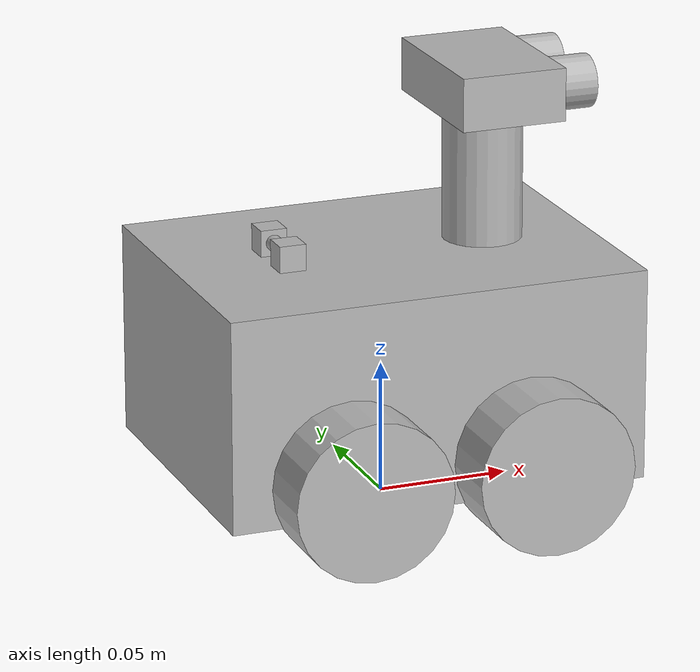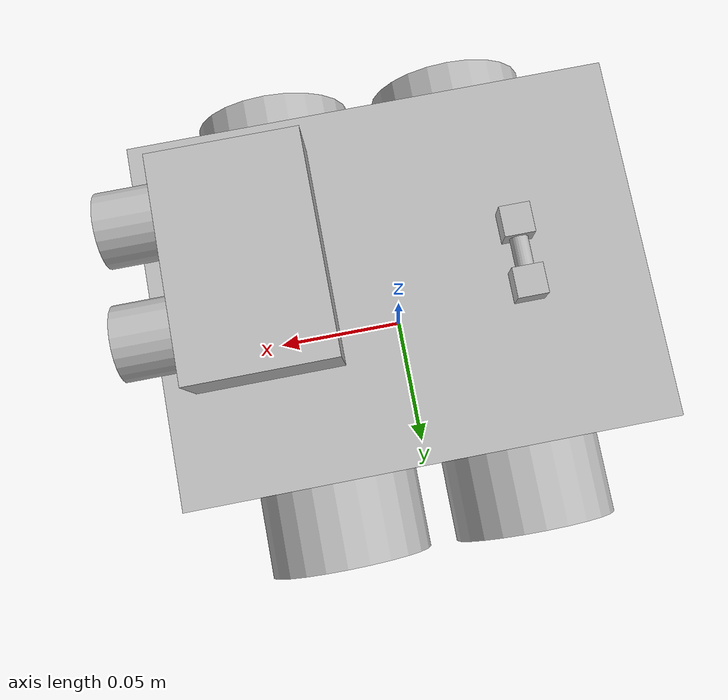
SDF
<?xml version="1.0"?>

<!--

  Meet the MiMs.

  The cool kids of the block, these guys are the
  heart and soul of this project. Coordinate to
  map out the Hood for search and rescue.

-->

<sdf version="1.6">
  <model name="minimapper">

    <!--
      The Body of the MiM
      -------------------
    -->

    <link name="body">

      <pose>0 0 0.055 0 0 0</pose>
      <inertial>
        <mass>0.6</mass>
        <inertia>
          <ixx>0.00104</ixx>
          <iyy>0.00160</iyy>
          <izz>0.00200</izz>
          <ixy>0</ixy>
          <iyz>0</iyz>
          <ixz>0</ixz>
        </inertia>
      </inertial>

      <collision name="body_col">
        <geometry>
          <box><size>0.16 0.12 0.08</size></box>
        </geometry>
      </collision>

      <visual name="body_vis">
        <geometry>
          <box><size>0.16 0.12 0.08</size></box>
        </geometry>
      </visual>
    </link>

    <!--
      Front Right Wheel of the MiM
      ----------------------------
    -->

    <link name="wheel_fr">
      <pose>0.035 0.075 0.03 1.5708 0 0</pose>
      <inertial>
        <mass>0.5</mass>
        <inertia>
          <ixx>0.000150</ixx>
          <iyy>0.000150</iyy>
          <izz>0.000225</izz>
          <ixy>0</ixy>
          <iyz>0</iyz>
          <ixz>0</ixz>
        </inertia>
      </inertial>
      <collision name="wheel_fr_col">
        <geometry>
          <cylinder>
            <radius>0.03</radius>
            <length>0.03</length>
          </cylinder>
        </geometry>
      </collision>
      <visual name="wheel_fr_vis">
        <geometry>
          <cylinder>
            <radius>0.03</radius>
            <length>0.03</length>
          </cylinder>
        </geometry>
      </visual>
    </link>

    <joint name="wheel_fr_joint" type="revolute">
      <parent>body</parent>
      <child>wheel_fr</child>
      <axis>
        <xyz>0 0 1</xyz>
        <use_parent_model_frame>0</use_parent_model_frame>
      </axis>
    </joint>

    <!--
      Front Left Wheel of the MiM
      ---------------------------
    -->

    <link name="wheel_fl">
      <pose>0.035 -0.07 0.03 1.5708 0 0</pose>
      <inertial>
        <mass>0.5</mass>
        <inertia>
          <ixx>0.000150</ixx>
          <iyy>0.000150</iyy>
          <izz>0.000225</izz>
          <ixy>0</ixy>
          <iyz>0</iyz>
          <ixz>0</ixz>
        </inertia>
      </inertial>
      <collision name="wheel_fl_col">
        <geometry>
          <cylinder>
            <radius>0.03</radius>
            <length>0.03</length>
          </cylinder>
        </geometry>
      </collision>
      <visual name="wheel_fl_vis">
        <geometry>
          <cylinder>
            <radius>0.03</radius>
            <length>0.03</length>
          </cylinder>
        </geometry>
      </visual>
    </link>

    <joint name="wheel_fl_joint" type="revolute">
      <parent>body</parent>
      <child>wheel_fl</child>
      <axis>
        <xyz>0 0 1</xyz>
        <use_parent_model_frame>0</use_parent_model_frame>
      </axis>
    </joint>

    <!--
      Rear Right Wheel of the MiM
      ---------------------------
    -->

    <link name="wheel_rr">
      <pose>-0.035 0.075 0.03 1.5708 0 0</pose>
      <inertial>
        <mass>0.5</mass>
        <inertia>
          <ixx>0.000150</ixx>
          <iyy>0.000150</iyy>
          <izz>0.000225</izz>
          <ixy>0</ixy>
          <iyz>0</iyz>
          <ixz>0</ixz>
        </inertia>
      </inertial>
      <collision name="wheel_rr_col">
        <geometry>
          <cylinder>
            <radius>0.03</radius>
            <length>0.03</length>
          </cylinder>
        </geometry>
      </collision>
      <visual name="wheel_rr_vis">
        <geometry>
          <cylinder>
            <radius>0.03</radius>
            <length>0.03</length>
          </cylinder>
        </geometry>
      </visual>
    </link>

    <joint name="wheel_rr_joint" type="revolute">
      <parent>body</parent>
      <child>wheel_rr</child>
      <axis>
        <xyz>0 0 1</xyz>
        <use_parent_model_frame>0</use_parent_model_frame>
      </axis>
    </joint>

    <!--
      Rear Left Wheel of the MiM
      ---------------------------
    -->

    <link name="wheel_rl">
      <pose>-0.035 -0.07 0.03 1.5708 0 0</pose>
      <inertial>
        <mass>0.5</mass>
        <inertia>
          <ixx>0.000150</ixx>
          <iyy>0.000150</iyy>
          <izz>0.000225</izz>
          <ixy>0</ixy>
          <iyz>0</iyz>
          <ixz>0</ixz>
        </inertia>
      </inertial>
      <collision name="wheel_rl_col">
        <geometry>
          <cylinder>
            <radius>0.03</radius>
            <length>0.03</length>
          </cylinder>
        </geometry>
      </collision>
      <visual name="wheel_rl_vis">
        <geometry>
          <cylinder>
            <radius>0.03</radius>
            <length>0.03</length>
          </cylinder>
        </geometry>
      </visual>
    </link>

    <joint name="wheel_rl_joint" type="revolute">
      <parent>body</parent>
      <child>wheel_rl</child>
      <axis>
        <xyz>0 0 1</xyz>
        <use_parent_model_frame>0</use_parent_model_frame>
      </axis>
    </joint>

    <!--
      MiM Visual System
      -----------------
    -->

    <include>
      <uri>model://vision</uri>
      <pose>0.04 0 0.095 0 0 0</pose>
    </include>

    <joint name="neck_base_joint" type="fixed">
      <pose>0.04 0 0.095 0 0 0</pose>
      <parent>body</parent>
      <child>vision::neck</child>
    </joint>

    <!--
      MiM Control System
      ------------------
    -->

    <!--
      MiM Gossip System
      -----------------
    -->

    <include>
      <uri>model://gossip</uri>
      <pose>-0.04 0 0.095 0 0 0</pose>
    </include>

    <joint name="speaker_joint" type="fixed">
      <pose>-0.04 -0.005 0.095 0 0 0</pose>
      <parent>body</parent>
      <child>gossip::speaker</child>
    </joint>

    <joint name="listener_joint" type="fixed">
      <pose>-0.04 -0.005 0.095 0 0 0</pose>
      <parent>body</parent>
      <child>gossip::listener</child>
    </joint>

  </model>
</sdf>

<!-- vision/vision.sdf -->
<!--

  Meet the Visions.

  The visual system for a MiM. Can detect and
  range objects within its visual cone. Allows
  the MiM to "stick its neck out" for mapping.

-->

<sdf version="1.6">
  <model name="vision">

    <!--
      The Neck of the Visual System
      -----------------------------
    -->

    <link name="neck">

      <pose>0 0 0.025 0 0 0</pose>
      <inertial>
        <mass>0.1</mass>
        <inertia>
          <ixx>0.00002646</ixx>
          <iyy>0.00002646</iyy>
          <izz>0.00001125</izz>
          <ixy>0</ixy>
          <iyz>0</iyz>
          <ixz>0</ixz>
        </inertia>
      </inertial>

      <collision name="neck_col">
        <geometry>
          <cylinder>
            <radius>0.015</radius>
            <length>0.050</length>
          </cylinder>
        </geometry>
      </collision>

      <visual name="neck_vis">
        <geometry>
          <cylinder>
            <radius>0.015</radius>
            <length>0.050</length>
          </cylinder>
        </geometry>
      </visual>
    </link>

    <!--
      The Head of the Visual System
      -----------------------------
    -->

    <link name="head">

      <pose>0 0 0.060 0 0 0</pose>
      <inertial>
        <mass>0.1</mass>
        <inertia>
          <ixx>0.00003333</ixx>
          <iyy>0.00001667</iyy>
          <izz>0.00004333</izz>
          <ixy>0</ixy>
          <iyz>0</iyz>
          <ixz>0</ixz>
        </inertia>
      </inertial>

      <collision name="head_col">
        <geometry>
          <box><size>0.04 0.06 0.02</size></box>
        </geometry>
      </collision>

      <visual name="head_vis">
        <geometry>
          <box><size>0.04 0.06 0.02</size></box>
        </geometry>
      </visual>
    </link>

    <!--
      The Top Joint of the Neck
      -------------------------

      The bottom is attached to the MiM.
    -->

    <joint name="neck_top_joint" type="revolute">

      <pose>0 0 -0.01 0 0 0</pose>
      <parent>neck</parent>
      <child>head</child>

      <axis>
        <xyz>0 0 1</xyz>
        <initial_position>-1.3091</initial_position>
        <limit>
          <lower>-1.309</lower>
          <upper>1.309</upper>
        </limit>
      </axis>
    </joint>

    <!--
      The Left Eye
      ------------

      The reciever for Ultrasonic sensor is on
      this eye.
    -->

    <link name="eye_left">

      <pose>0.0275 0.015 0.06 0 1.5708 3.1416</pose>
      <inertial>
        <mass>0.05</mass>
        <inertia>
          <ixx>0.00000219</ixx>
          <iyy>0.00000219</iyy>
          <izz>0.00000250</izz>
          <ixy>0</ixy>
          <iyz>0</iyz>
          <ixz>0</ixz>
        </inertia>
      </inertial>

      <collision name="eye_left_col">
        <geometry>
          <cylinder>
            <radius>0.010</radius>
            <length>0.015</length>
          </cylinder>
        </geometry>
      </collision>

      <visual name="eye_left_vis">
        <geometry>
          <cylinder>
            <radius>0.010</radius>
            <length>0.015</length>
          </cylinder>
        </geometry>
      </visual>

      <!--
        A Ray sensor acting as an Ultrasonic sensor.
      -->
      <sensor name="sonar_sensor" type="ray">
        <pose>0 0 0 0 1.5708 0</pose>
        <always_on>1</always_on>
        <update_rate>100</update_rate>
        <visualize>1</visualize>

        <ray>
          <scan>
            <horizontal>
              <samples>32</samples>
              <resolution>1</resolution>
              <min_angle>-0.1309</min_angle>
              <max_angle>0.1309</max_angle>
            </horizontal>
          </scan>

          <range>
            <min>0.02</min>
            <max>5.00</max>
            <resolution>0.02</resolution>
          </range>
        </ray>

      </sensor>
    </link>

    <!--
      Fix the Eye to the Head.
    -->
    <joint name="eye_left_joint" type="fixed">
      <parent>head</parent>
      <child>eye_left</child>
    </joint>

    <!--
      The Right Eye
      -------------

      Simply for aesthetics.
    -->
    <link name="eye_right">

      <pose>0.0275 -0.015 0.06 0 1.5708 0</pose>
      <inertial>
        <mass>0.05</mass>
        <inertia>
          <ixx>0.00000219</ixx>
          <iyy>0.00000219</iyy>
          <izz>0.00000250</izz>
          <ixy>0</ixy>
          <iyz>0</iyz>
          <ixz>0</ixz>
        </inertia>
      </inertial>
      <collision name="eye_right_col">
        <geometry>
          <cylinder>
            <radius>0.010</radius>
            <length>0.015</length>
          </cylinder>
        </geometry>
      </collision>
      <visual name="eye_right_vis">
        <geometry>
          <cylinder>
            <radius>0.010</radius>
            <length>0.015</length>
          </cylinder>
        </geometry>
      </visual>
    </link>

    <!--
      Fix the Eye to the Head.
    -->
    <joint name="eye_right_joint" type="fixed">
      <parent>head</parent>
      <child>eye_right</child>
    </joint>

    <!--
      Vision Control System
      ---------------------
    -->

    <plugin name="vison_control" filename="vision.so">
      <velocity>0.5</velocity>
      <pid>
        <p>0.005</p>
        <i>0</i>
        <d>0</d>
      </pid>
    </plugin>

  </model>
</sdf>

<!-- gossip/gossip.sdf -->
<!--

  Meet the Gossips.

  The communication system for a MiM. Allows MiMs
  to communicate P2P or Broadcast. Uses WiFi and
  therefore intensity can be used to estimate
  distances for localization.

-->

<sdf version="1.6">
  <model name="gossip">

    <!--
      The Producer
      ------------
    -->

    <link name="speaker">

      <pose>0 -0.01 0.005 0 0 0</pose>
      <inertial>
        <mass>0.01</mass>
        <inertia>
          <ixx>0.00000017</ixx>
          <iyy>0.00000017</iyy>
          <izz>0.00000017</izz>
          <ixy>0</ixy>
          <iyz>0</iyz>
          <ixz>0</ixz>
        </inertia>
      </inertial>

      <collision name="speaker_col">
        <geometry>
          <box><size>0.01 0.01 0.01</size></box>
        </geometry>
      </collision>

      <visual name="speaker_vis">
        <geometry>
          <box><size>0.01 0.01 0.01</size></box>
        </geometry>
      </visual>

      <!--
        Wireless Transmitter
      -->
      <sensor name="wtrans_sensor" type="wireless_transmitter">
        <always_on>1</always_on>
        <update_rate>1</update_rate>
        <visualize>true</visualize>
        <transceiver>
          <essid>osrf</essid>
          <frequency>2442.0</frequency>
          <power>14.5</power>
          <gain>2.6</gain>
        </transceiver>
        <plugin name="wtrans_plugin" filename="speaker.so"></plugin>
      </sensor>

    </link>

    <!--
      The Listener
      ------------
    -->

    <link name="listener">

      <pose>0 0.01 0.005 0 0 0</pose>
      <inertial>
        <mass>0.01</mass>
        <inertia>
          <ixx>0.00000017</ixx>
          <iyy>0.00000017</iyy>
          <izz>0.00000017</izz>
          <ixy>0</ixy>
          <iyz>0</iyz>
          <ixz>0</ixz>
        </inertia>
      </inertial>

      <collision name="listener_col">
        <geometry>
          <box><size>0.01 0.01 0.01</size></box>
        </geometry>
      </collision>

      <visual name="listener_vis">
        <geometry>
          <box><size>0.01 0.01 0.01</size></box>
        </geometry>
      </visual>

      <!--
        Wireless Receiver
      -->
      <sensor name="wrecv_sensor" type="wireless_receiver">
        <always_on>1</always_on>
        <update_rate>1</update_rate>
        <visualize>true</visualize>
        <transceiver>
          <min_frequency>2412.0</min_frequency>
          <max_frequency>2484.0</max_frequency>
          <power>14.5</power>
          <gain>2.5</gain>
          <sensitivity>-90.0</sensitivity>
        </transceiver>
        <plugin name="wrecv_plugin" filename="listener.so"></plugin>
      </sensor>

    </link>

    <!--
      The Medium
      ----------
    -->

    <link name="medium">

      <pose>0 0 0.005 1.5708 0 0</pose>
      <inertial>
        <mass>0.01</mass>
        <inertia>
          <ixx>0.00000036</ixx>
          <iyy>0.00000036</iyy>
          <izz>0.00000004</izz>
          <ixy>0</ixy>
          <iyz>0</iyz>
          <ixz>0</ixz>
        </inertia>
      </inertial>

      <collision name="medium_col">
        <geometry>
          <cylinder>
            <radius>0.003</radius>
            <length>0.02</length>
          </cylinder>
        </geometry>
      </collision>

      <visual name="medium_vis">
        <geometry>
          <cylinder>
            <radius>0.003</radius>
            <length>0.02</length>
          </cylinder>
        </geometry>
      </visual>

    </link>

    <joint name="medium_left_joint" type="fixed">
      <pose>0 -0.01 0.005</pose>
      <parent>speaker</parent>
      <child>medium</child>
    </joint>

    <joint name="medium_right_joint" type="fixed">
      <pose>0 0.01 0.005</pose>
      <parent>listener</parent>
      <child>medium</child>
    </joint>

  </model>
</sdf>
